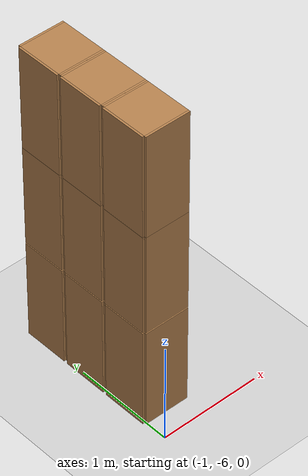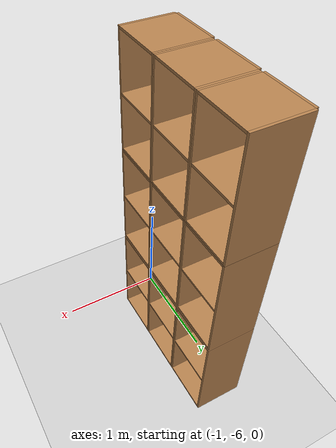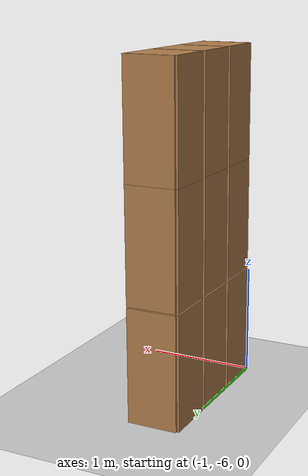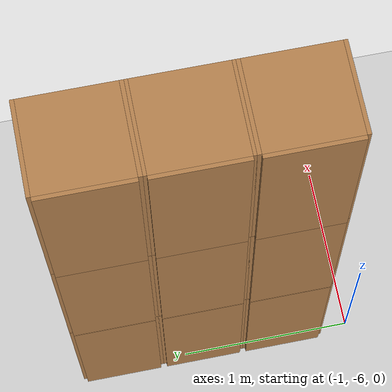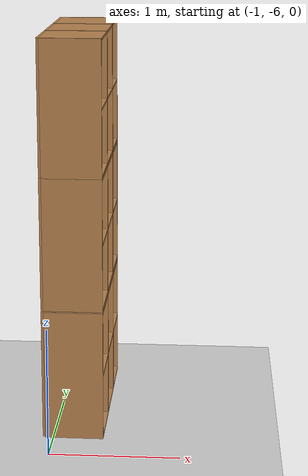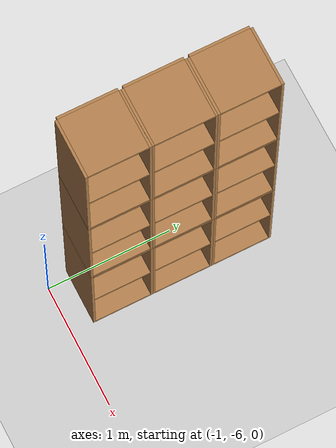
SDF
<sdf version="1.6">
 <world name="default">
  <model name="ground_plane">
   <static>1</static>
   <link name="link">
    <collision name="collision">
     <geometry><plane><normal>0 0 1</normal><size>100 100</size></plane></geometry>
     <surface>
      <contact><collide_bitmask>65535</collide_bitmask></contact>
      <friction><ode><mu>100</mu><mu2>50</mu2></ode></friction>
     </surface>
    </collision>
    <visual name="visual">
     <cast_shadows>0</cast_shadows>
     <geometry><plane><normal>0 0 1</normal><size>100 100</size></plane></geometry>
     <material>
      <script><uri>file://media/materials/scripts/gazebo.material</uri><name>Gazebo/Grey</name></script>
     </material>
    </visual>
   </link>
  </model>
  <model name="Locker18_clone_4_clone_2_clone_1_clone_clone_clone_2_clone_clone_2_clone_clone_0">
   <model name="Locker18">
    <model name="Locker3">
     <model name="cabinet">
      <static>1</static>
      <link name="cabinet_bottom_plate">
       <inertial>
        <pose>0 0 -1 0 -0 0</pose>
        <inertia><ixx>2.05</ixx><ixy>0</ixy><ixz>0</ixz><iyy>2.05</iyy><iyz>0</iyz><izz>2.05</izz></inertia>
        <mass>25</mass>
       </inertial>
       <collision name="cabinet_bottom_plate_geom">
        <pose>0 0 0.01 0 -0 0</pose>
        <geometry><box><size>0.45 0.45 0.02</size></box></geometry>
       </collision>
       <visual name="cabinet_bottom_plate_geom_visual">
        <pose>0 0 0.01 0 -0 0</pose>
        <geometry><box><size>0.45 0.45 0.02</size></box></geometry>
        <material>
         <script><uri>file://media/materials/scripts/gazebo.material</uri><name>Gazebo/Wood</name></script>
        </material>
       </visual>
       <collision name="cabinet_bottom_plate_geom_cabinet_back_plate">
        <pose>0.235 0 0.51 0 -0 0</pose>
        <geometry><box><size>0.02 0.45 1.02</size></box></geometry>
       </collision>
       <visual name="cabinet_bottom_plate_geom_cabinet_back_plate_visual">
        <pose>0.235 0 0.51 0 -0 0</pose>
        <geometry><box><size>0.02 0.45 1.02</size></box></geometry>
        <material>
         <script><uri>file://media/materials/scripts/gazebo.material</uri><name>Gazebo/Wood</name></script>
        </material>
       </visual>
       <collision name="cabinet_bottom_plate_geom_cabinet_left_plate">
        <pose>0 0.235 0.51 0 -0 0</pose>
        <geometry><box><size>0.45 0.02 1.02</size></box></geometry>
       </collision>
       <visual name="cabinet_bottom_plate_geom_cabinet_left_plate_visual">
        <pose>0 0.235 0.51 0 -0 0</pose>
        <geometry><box><size>0.45 0.02 1.02</size></box></geometry>
        <material>
         <script><uri>file://media/materials/scripts/gazebo.material</uri><name>Gazebo/Wood</name></script>
        </material>
       </visual>
       <collision name="cabinet_bottom_plate_geom_cabinet_middle_plate">
        <pose>0 0 0.51 0 -0 0</pose>
        <geometry><box><size>0.45 0.45 0.02</size></box></geometry>
       </collision>
       <visual name="cabinet_bottom_plate_geom_cabinet_middle_plate_visual">
        <pose>0 0 0.51 0 -0 0</pose>
        <geometry><box><size>0.45 0.45 0.02</size></box></geometry>
        <material>
         <script><uri>file://media/materials/scripts/gazebo.material</uri><name>Gazebo/Wood</name></script>
        </material>
       </visual>
       <collision name="cabinet_bottom_plate_geom_cabinet_right_plate">
        <pose>0 -0.235 0.51 0 -0 0</pose>
        <geometry><box><size>0.45 0.02 1.02</size></box></geometry>
       </collision>
       <visual name="cabinet_bottom_plate_geom_cabinet_right_plate_visual">
        <pose>0 -0.235 0.51 0 -0 0</pose>
        <geometry><box><size>0.45 0.02 1.02</size></box></geometry>
        <material>
         <script><uri>file://media/materials/scripts/gazebo.material</uri><name>Gazebo/Wood</name></script>
        </material>
       </visual>
       <collision name="cabinet_bottom_plate_geom_cabinet_top_plate">
        <pose>0 0 1.01 0 -0 0</pose>
        <geometry><box><size>0.45 0.45 0.02</size></box></geometry>
       </collision>
       <visual name="cabinet_bottom_plate_geom_cabinet_top_plate_visual">
        <pose>0 0 1.01 0 -0 0</pose>
        <geometry><box><size>0.45 0.45 0.02</size></box></geometry>
        <material>
         <script><uri>file://media/materials/scripts/gazebo.material</uri><name>Gazebo/Wood</name></script>
        </material>
       </visual>
      </link>
      <pose>-0.676968 1.45758 0 0 -0 0</pose>
     </model>
     <model name="cabinet_clone">
      <static>1</static>
      <link name="cabinet_bottom_plate">
       <inertial>
        <pose>0 0 -1 0 -0 0</pose>
        <inertia><ixx>2.05</ixx><ixy>0</ixy><ixz>0</ixz><iyy>2.05</iyy><iyz>0</iyz><izz>2.05</izz></inertia>
        <mass>25</mass>
       </inertial>
       <collision name="cabinet_bottom_plate_geom">
        <pose>0 0 0.01 0 -0 0</pose>
        <geometry><box><size>0.45 0.45 0.02</size></box></geometry>
       </collision>
       <visual name="cabinet_bottom_plate_geom_visual">
        <pose>0 0 0.01 0 -0 0</pose>
        <geometry><box><size>0.45 0.45 0.02</size></box></geometry>
        <material>
         <script><uri>file://media/materials/scripts/gazebo.material</uri><name>Gazebo/Wood</name></script>
        </material>
       </visual>
       <collision name="cabinet_bottom_plate_geom_cabinet_back_plate">
        <pose>0.235 0 0.51 0 -0 0</pose>
        <geometry><box><size>0.02 0.45 1.02</size></box></geometry>
       </collision>
       <visual name="cabinet_bottom_plate_geom_cabinet_back_plate_visual">
        <pose>0.235 0 0.51 0 -0 0</pose>
        <geometry><box><size>0.02 0.45 1.02</size></box></geometry>
        <material>
         <script><uri>file://media/materials/scripts/gazebo.material</uri><name>Gazebo/Wood</name></script>
        </material>
       </visual>
       <collision name="cabinet_bottom_plate_geom_cabinet_left_plate">
        <pose>0 0.235 0.51 0 -0 0</pose>
        <geometry><box><size>0.45 0.02 1.02</size></box></geometry>
       </collision>
       <visual name="cabinet_bottom_plate_geom_cabinet_left_plate_visual">
        <pose>0 0.235 0.51 0 -0 0</pose>
        <geometry><box><size>0.45 0.02 1.02</size></box></geometry>
        <material>
         <script><uri>file://media/materials/scripts/gazebo.material</uri><name>Gazebo/Wood</name></script>
        </material>
       </visual>
       <collision name="cabinet_bottom_plate_geom_cabinet_middle_plate">
        <pose>0 0 0.51 0 -0 0</pose>
        <geometry><box><size>0.45 0.45 0.02</size></box></geometry>
       </collision>
       <visual name="cabinet_bottom_plate_geom_cabinet_middle_plate_visual">
        <pose>0 0 0.51 0 -0 0</pose>
        <geometry><box><size>0.45 0.45 0.02</size></box></geometry>
        <material>
         <script><uri>file://media/materials/scripts/gazebo.material</uri><name>Gazebo/Wood</name></script>
        </material>
       </visual>
       <collision name="cabinet_bottom_plate_geom_cabinet_right_plate">
        <pose>0 -0.235 0.51 0 -0 0</pose>
        <geometry><box><size>0.45 0.02 1.02</size></box></geometry>
       </collision>
       <visual name="cabinet_bottom_plate_geom_cabinet_right_plate_visual">
        <pose>0 -0.235 0.51 0 -0 0</pose>
        <geometry><box><size>0.45 0.02 1.02</size></box></geometry>
        <material>
         <script><uri>file://media/materials/scripts/gazebo.material</uri><name>Gazebo/Wood</name></script>
        </material>
       </visual>
       <collision name="cabinet_bottom_plate_geom_cabinet_top_plate">
        <pose>0 0 1.01 0 -0 0</pose>
        <geometry><box><size>0.45 0.45 0.02</size></box></geometry>
       </collision>
       <visual name="cabinet_bottom_plate_geom_cabinet_top_plate_visual">
        <pose>0 0 1.01 0 -0 0</pose>
        <geometry><box><size>0.45 0.45 0.02</size></box></geometry>
        <material>
         <script><uri>file://media/materials/scripts/gazebo.material</uri><name>Gazebo/Wood</name></script>
        </material>
       </visual>
      </link>
      <pose>-0.676968 0.970971 0 0 -0 0</pose>
     </model>
     <model name="cabinet_clone_0">
      <static>1</static>
      <link name="cabinet_bottom_plate">
       <inertial>
        <pose>0 0 -1 0 -0 0</pose>
        <inertia><ixx>2.05</ixx><ixy>0</ixy><ixz>0</ixz><iyy>2.05</iyy><iyz>0</iyz><izz>2.05</izz></inertia>
        <mass>25</mass>
       </inertial>
       <collision name="cabinet_bottom_plate_geom">
        <pose>0 0 0.01 0 -0 0</pose>
        <geometry><box><size>0.45 0.45 0.02</size></box></geometry>
       </collision>
       <visual name="cabinet_bottom_plate_geom_visual">
        <pose>0 0 0.01 0 -0 0</pose>
        <geometry><box><size>0.45 0.45 0.02</size></box></geometry>
        <material>
         <script><uri>file://media/materials/scripts/gazebo.material</uri><name>Gazebo/Wood</name></script>
        </material>
       </visual>
       <collision name="cabinet_bottom_plate_geom_cabinet_back_plate">
        <pose>0.235 0 0.51 0 -0 0</pose>
        <geometry><box><size>0.02 0.45 1.02</size></box></geometry>
       </collision>
       <visual name="cabinet_bottom_plate_geom_cabinet_back_plate_visual">
        <pose>0.235 0 0.51 0 -0 0</pose>
        <geometry><box><size>0.02 0.45 1.02</size></box></geometry>
        <material>
         <script><uri>file://media/materials/scripts/gazebo.material</uri><name>Gazebo/Wood</name></script>
        </material>
       </visual>
       <collision name="cabinet_bottom_plate_geom_cabinet_left_plate">
        <pose>0 0.235 0.51 0 -0 0</pose>
        <geometry><box><size>0.45 0.02 1.02</size></box></geometry>
       </collision>
       <visual name="cabinet_bottom_plate_geom_cabinet_left_plate_visual">
        <pose>0 0.235 0.51 0 -0 0</pose>
        <geometry><box><size>0.45 0.02 1.02</size></box></geometry>
        <material>
         <script><uri>file://media/materials/scripts/gazebo.material</uri><name>Gazebo/Wood</name></script>
        </material>
       </visual>
       <collision name="cabinet_bottom_plate_geom_cabinet_middle_plate">
        <pose>0 0 0.51 0 -0 0</pose>
        <geometry><box><size>0.45 0.45 0.02</size></box></geometry>
       </collision>
       <visual name="cabinet_bottom_plate_geom_cabinet_middle_plate_visual">
        <pose>0 0 0.51 0 -0 0</pose>
        <geometry><box><size>0.45 0.45 0.02</size></box></geometry>
        <material>
         <script><uri>file://media/materials/scripts/gazebo.material</uri><name>Gazebo/Wood</name></script>
        </material>
       </visual>
       <collision name="cabinet_bottom_plate_geom_cabinet_right_plate">
        <pose>0 -0.235 0.51 0 -0 0</pose>
        <geometry><box><size>0.45 0.02 1.02</size></box></geometry>
       </collision>
       <visual name="cabinet_bottom_plate_geom_cabinet_right_plate_visual">
        <pose>0 -0.235 0.51 0 -0 0</pose>
        <geometry><box><size>0.45 0.02 1.02</size></box></geometry>
        <material>
         <script><uri>file://media/materials/scripts/gazebo.material</uri><name>Gazebo/Wood</name></script>
        </material>
       </visual>
       <collision name="cabinet_bottom_plate_geom_cabinet_top_plate">
        <pose>0 0 1.01 0 -0 0</pose>
        <geometry><box><size>0.45 0.45 0.02</size></box></geometry>
       </collision>
       <visual name="cabinet_bottom_plate_geom_cabinet_top_plate_visual">
        <pose>0 0 1.01 0 -0 0</pose>
        <geometry><box><size>0.45 0.45 0.02</size></box></geometry>
        <material>
         <script><uri>file://media/materials/scripts/gazebo.material</uri><name>Gazebo/Wood</name></script>
        </material>
       </visual>
      </link>
      <pose>-0.676968 0.48391 0 0 -0 0</pose>
     </model>
     <static>0</static>
     <pose>0 3e-06 -1.02763 0 -0 0</pose>
    </model>
    <model name="Locker3_clone">
     <model name="cabinet">
      <static>1</static>
      <link name="cabinet_bottom_plate">
       <inertial>
        <pose>0 0 -1 0 -0 0</pose>
        <inertia><ixx>2.05</ixx><ixy>0</ixy><ixz>0</ixz><iyy>2.05</iyy><iyz>0</iyz><izz>2.05</izz></inertia>
        <mass>25</mass>
       </inertial>
       <collision name="cabinet_bottom_plate_geom">
        <pose>0 0 0.01 0 -0 0</pose>
        <geometry><box><size>0.45 0.45 0.02</size></box></geometry>
       </collision>
       <visual name="cabinet_bottom_plate_geom_visual">
        <pose>0 0 0.01 0 -0 0</pose>
        <geometry><box><size>0.45 0.45 0.02</size></box></geometry>
        <material>
         <script><uri>file://media/materials/scripts/gazebo.material</uri><name>Gazebo/Wood</name></script>
        </material>
       </visual>
       <collision name="cabinet_bottom_plate_geom_cabinet_back_plate">
        <pose>0.235 0 0.51 0 -0 0</pose>
        <geometry><box><size>0.02 0.45 1.02</size></box></geometry>
       </collision>
       <visual name="cabinet_bottom_plate_geom_cabinet_back_plate_visual">
        <pose>0.235 0 0.51 0 -0 0</pose>
        <geometry><box><size>0.02 0.45 1.02</size></box></geometry>
        <material>
         <script><uri>file://media/materials/scripts/gazebo.material</uri><name>Gazebo/Wood</name></script>
        </material>
       </visual>
       <collision name="cabinet_bottom_plate_geom_cabinet_left_plate">
        <pose>0 0.235 0.51 0 -0 0</pose>
        <geometry><box><size>0.45 0.02 1.02</size></box></geometry>
       </collision>
       <visual name="cabinet_bottom_plate_geom_cabinet_left_plate_visual">
        <pose>0 0.235 0.51 0 -0 0</pose>
        <geometry><box><size>0.45 0.02 1.02</size></box></geometry>
        <material>
         <script><uri>file://media/materials/scripts/gazebo.material</uri><name>Gazebo/Wood</name></script>
        </material>
       </visual>
       <collision name="cabinet_bottom_plate_geom_cabinet_middle_plate">
        <pose>0 0 0.51 0 -0 0</pose>
        <geometry><box><size>0.45 0.45 0.02</size></box></geometry>
       </collision>
       <visual name="cabinet_bottom_plate_geom_cabinet_middle_plate_visual">
        <pose>0 0 0.51 0 -0 0</pose>
        <geometry><box><size>0.45 0.45 0.02</size></box></geometry>
        <material>
         <script><uri>file://media/materials/scripts/gazebo.material</uri><name>Gazebo/Wood</name></script>
        </material>
       </visual>
       <collision name="cabinet_bottom_plate_geom_cabinet_right_plate">
        <pose>0 -0.235 0.51 0 -0 0</pose>
        <geometry><box><size>0.45 0.02 1.02</size></box></geometry>
       </collision>
       <visual name="cabinet_bottom_plate_geom_cabinet_right_plate_visual">
        <pose>0 -0.235 0.51 0 -0 0</pose>
        <geometry><box><size>0.45 0.02 1.02</size></box></geometry>
        <material>
         <script><uri>file://media/materials/scripts/gazebo.material</uri><name>Gazebo/Wood</name></script>
        </material>
       </visual>
       <collision name="cabinet_bottom_plate_geom_cabinet_top_plate">
        <pose>0 0 1.01 0 -0 0</pose>
        <geometry><box><size>0.45 0.45 0.02</size></box></geometry>
       </collision>
       <visual name="cabinet_bottom_plate_geom_cabinet_top_plate_visual">
        <pose>0 0 1.01 0 -0 0</pose>
        <geometry><box><size>0.45 0.45 0.02</size></box></geometry>
        <material>
         <script><uri>file://media/materials/scripts/gazebo.material</uri><name>Gazebo/Wood</name></script>
        </material>
       </visual>
      </link>
      <pose>-0.676968 1.45758 0 0 -0 0</pose>
     </model>
     <model name="cabinet_clone">
      <static>1</static>
      <link name="cabinet_bottom_plate">
       <inertial>
        <pose>0 0 -1 0 -0 0</pose>
        <inertia><ixx>2.05</ixx><ixy>0</ixy><ixz>0</ixz><iyy>2.05</iyy><iyz>0</iyz><izz>2.05</izz></inertia>
        <mass>25</mass>
       </inertial>
       <collision name="cabinet_bottom_plate_geom">
        <pose>0 0 0.01 0 -0 0</pose>
        <geometry><box><size>0.45 0.45 0.02</size></box></geometry>
       </collision>
       <visual name="cabinet_bottom_plate_geom_visual">
        <pose>0 0 0.01 0 -0 0</pose>
        <geometry><box><size>0.45 0.45 0.02</size></box></geometry>
        <material>
         <script><uri>file://media/materials/scripts/gazebo.material</uri><name>Gazebo/Wood</name></script>
        </material>
       </visual>
       <collision name="cabinet_bottom_plate_geom_cabinet_back_plate">
        <pose>0.235 0 0.51 0 -0 0</pose>
        <geometry><box><size>0.02 0.45 1.02</size></box></geometry>
       </collision>
       <visual name="cabinet_bottom_plate_geom_cabinet_back_plate_visual">
        <pose>0.235 0 0.51 0 -0 0</pose>
        <geometry><box><size>0.02 0.45 1.02</size></box></geometry>
        <material>
         <script><uri>file://media/materials/scripts/gazebo.material</uri><name>Gazebo/Wood</name></script>
        </material>
       </visual>
       <collision name="cabinet_bottom_plate_geom_cabinet_left_plate">
        <pose>0 0.235 0.51 0 -0 0</pose>
        <geometry><box><size>0.45 0.02 1.02</size></box></geometry>
       </collision>
       <visual name="cabinet_bottom_plate_geom_cabinet_left_plate_visual">
        <pose>0 0.235 0.51 0 -0 0</pose>
        <geometry><box><size>0.45 0.02 1.02</size></box></geometry>
        <material>
         <script><uri>file://media/materials/scripts/gazebo.material</uri><name>Gazebo/Wood</name></script>
        </material>
       </visual>
       <collision name="cabinet_bottom_plate_geom_cabinet_middle_plate">
        <pose>0 0 0.51 0 -0 0</pose>
        <geometry><box><size>0.45 0.45 0.02</size></box></geometry>
       </collision>
       <visual name="cabinet_bottom_plate_geom_cabinet_middle_plate_visual">
        <pose>0 0 0.51 0 -0 0</pose>
        <geometry><box><size>0.45 0.45 0.02</size></box></geometry>
        <material>
         <script><uri>file://media/materials/scripts/gazebo.material</uri><name>Gazebo/Wood</name></script>
        </material>
       </visual>
       <collision name="cabinet_bottom_plate_geom_cabinet_right_plate">
        <pose>0 -0.235 0.51 0 -0 0</pose>
        <geometry><box><size>0.45 0.02 1.02</size></box></geometry>
       </collision>
       <visual name="cabinet_bottom_plate_geom_cabinet_right_plate_visual">
        <pose>0 -0.235 0.51 0 -0 0</pose>
        <geometry><box><size>0.45 0.02 1.02</size></box></geometry>
        <material>
         <script><uri>file://media/materials/scripts/gazebo.material</uri><name>Gazebo/Wood</name></script>
        </material>
       </visual>
       <collision name="cabinet_bottom_plate_geom_cabinet_top_plate">
        <pose>0 0 1.01 0 -0 0</pose>
        <geometry><box><size>0.45 0.45 0.02</size></box></geometry>
       </collision>
       <visual name="cabinet_bottom_plate_geom_cabinet_top_plate_visual">
        <pose>0 0 1.01 0 -0 0</pose>
        <geometry><box><size>0.45 0.45 0.02</size></box></geometry>
        <material>
         <script><uri>file://media/materials/scripts/gazebo.material</uri><name>Gazebo/Wood</name></script>
        </material>
       </visual>
      </link>
      <pose>-0.676968 0.970971 0 0 -0 0</pose>
     </model>
     <model name="cabinet_clone_0">
      <static>1</static>
      <link name="cabinet_bottom_plate">
       <inertial>
        <pose>0 0 -1 0 -0 0</pose>
        <inertia><ixx>2.05</ixx><ixy>0</ixy><ixz>0</ixz><iyy>2.05</iyy><iyz>0</iyz><izz>2.05</izz></inertia>
        <mass>25</mass>
       </inertial>
       <collision name="cabinet_bottom_plate_geom">
        <pose>0 0 0.01 0 -0 0</pose>
        <geometry><box><size>0.45 0.45 0.02</size></box></geometry>
       </collision>
       <visual name="cabinet_bottom_plate_geom_visual">
        <pose>0 0 0.01 0 -0 0</pose>
        <geometry><box><size>0.45 0.45 0.02</size></box></geometry>
        <material>
         <script><uri>file://media/materials/scripts/gazebo.material</uri><name>Gazebo/Wood</name></script>
        </material>
       </visual>
       <collision name="cabinet_bottom_plate_geom_cabinet_back_plate">
        <pose>0.235 0 0.51 0 -0 0</pose>
        <geometry><box><size>0.02 0.45 1.02</size></box></geometry>
       </collision>
       <visual name="cabinet_bottom_plate_geom_cabinet_back_plate_visual">
        <pose>0.235 0 0.51 0 -0 0</pose>
        <geometry><box><size>0.02 0.45 1.02</size></box></geometry>
        <material>
         <script><uri>file://media/materials/scripts/gazebo.material</uri><name>Gazebo/Wood</name></script>
        </material>
       </visual>
       <collision name="cabinet_bottom_plate_geom_cabinet_left_plate">
        <pose>0 0.235 0.51 0 -0 0</pose>
        <geometry><box><size>0.45 0.02 1.02</size></box></geometry>
       </collision>
       <visual name="cabinet_bottom_plate_geom_cabinet_left_plate_visual">
        <pose>0 0.235 0.51 0 -0 0</pose>
        <geometry><box><size>0.45 0.02 1.02</size></box></geometry>
        <material>
         <script><uri>file://media/materials/scripts/gazebo.material</uri><name>Gazebo/Wood</name></script>
        </material>
       </visual>
       <collision name="cabinet_bottom_plate_geom_cabinet_middle_plate">
        <pose>0 0 0.51 0 -0 0</pose>
        <geometry><box><size>0.45 0.45 0.02</size></box></geometry>
       </collision>
       <visual name="cabinet_bottom_plate_geom_cabinet_middle_plate_visual">
        <pose>0 0 0.51 0 -0 0</pose>
        <geometry><box><size>0.45 0.45 0.02</size></box></geometry>
        <material>
         <script><uri>file://media/materials/scripts/gazebo.material</uri><name>Gazebo/Wood</name></script>
        </material>
       </visual>
       <collision name="cabinet_bottom_plate_geom_cabinet_right_plate">
        <pose>0 -0.235 0.51 0 -0 0</pose>
        <geometry><box><size>0.45 0.02 1.02</size></box></geometry>
       </collision>
       <visual name="cabinet_bottom_plate_geom_cabinet_right_plate_visual">
        <pose>0 -0.235 0.51 0 -0 0</pose>
        <geometry><box><size>0.45 0.02 1.02</size></box></geometry>
        <material>
         <script><uri>file://media/materials/scripts/gazebo.material</uri><name>Gazebo/Wood</name></script>
        </material>
       </visual>
       <collision name="cabinet_bottom_plate_geom_cabinet_top_plate">
        <pose>0 0 1.01 0 -0 0</pose>
        <geometry><box><size>0.45 0.45 0.02</size></box></geometry>
       </collision>
       <visual name="cabinet_bottom_plate_geom_cabinet_top_plate_visual">
        <pose>0 0 1.01 0 -0 0</pose>
        <geometry><box><size>0.45 0.45 0.02</size></box></geometry>
        <material>
         <script><uri>file://media/materials/scripts/gazebo.material</uri><name>Gazebo/Wood</name></script>
        </material>
       </visual>
      </link>
      <pose>-0.676968 0.48391 0 0 -0 0</pose>
     </model>
     <static>0</static>
     <pose>0 3e-06 0.003717 0 -0 0</pose>
    </model>
    <model name="Locker3_clone_clone">
     <model name="cabinet">
      <static>1</static>
      <link name="cabinet_bottom_plate">
       <inertial>
        <pose>0 0 -1 0 -0 0</pose>
        <inertia><ixx>2.05</ixx><ixy>0</ixy><ixz>0</ixz><iyy>2.05</iyy><iyz>0</iyz><izz>2.05</izz></inertia>
        <mass>25</mass>
       </inertial>
       <collision name="cabinet_bottom_plate_geom">
        <pose>0 0 0.01 0 -0 0</pose>
        <geometry><box><size>0.45 0.45 0.02</size></box></geometry>
       </collision>
       <visual name="cabinet_bottom_plate_geom_visual">
        <pose>0 0 0.01 0 -0 0</pose>
        <geometry><box><size>0.45 0.45 0.02</size></box></geometry>
        <material>
         <script><uri>file://media/materials/scripts/gazebo.material</uri><name>Gazebo/Wood</name></script>
        </material>
       </visual>
       <collision name="cabinet_bottom_plate_geom_cabinet_back_plate">
        <pose>0.235 0 0.51 0 -0 0</pose>
        <geometry><box><size>0.02 0.45 1.02</size></box></geometry>
       </collision>
       <visual name="cabinet_bottom_plate_geom_cabinet_back_plate_visual">
        <pose>0.235 0 0.51 0 -0 0</pose>
        <geometry><box><size>0.02 0.45 1.02</size></box></geometry>
        <material>
         <script><uri>file://media/materials/scripts/gazebo.material</uri><name>Gazebo/Wood</name></script>
        </material>
       </visual>
       <collision name="cabinet_bottom_plate_geom_cabinet_left_plate">
        <pose>0 0.235 0.51 0 -0 0</pose>
        <geometry><box><size>0.45 0.02 1.02</size></box></geometry>
       </collision>
       <visual name="cabinet_bottom_plate_geom_cabinet_left_plate_visual">
        <pose>0 0.235 0.51 0 -0 0</pose>
        <geometry><box><size>0.45 0.02 1.02</size></box></geometry>
        <material>
         <script><uri>file://media/materials/scripts/gazebo.material</uri><name>Gazebo/Wood</name></script>
        </material>
       </visual>
       <collision name="cabinet_bottom_plate_geom_cabinet_middle_plate">
        <pose>0 0 0.51 0 -0 0</pose>
        <geometry><box><size>0.45 0.45 0.02</size></box></geometry>
       </collision>
       <visual name="cabinet_bottom_plate_geom_cabinet_middle_plate_visual">
        <pose>0 0 0.51 0 -0 0</pose>
        <geometry><box><size>0.45 0.45 0.02</size></box></geometry>
        <material>
         <script><uri>file://media/materials/scripts/gazebo.material</uri><name>Gazebo/Wood</name></script>
        </material>
       </visual>
       <collision name="cabinet_bottom_plate_geom_cabinet_right_plate">
        <pose>0 -0.235 0.51 0 -0 0</pose>
        <geometry><box><size>0.45 0.02 1.02</size></box></geometry>
       </collision>
       <visual name="cabinet_bottom_plate_geom_cabinet_right_plate_visual">
        <pose>0 -0.235 0.51 0 -0 0</pose>
        <geometry><box><size>0.45 0.02 1.02</size></box></geometry>
        <material>
         <script><uri>file://media/materials/scripts/gazebo.material</uri><name>Gazebo/Wood</name></script>
        </material>
       </visual>
       <collision name="cabinet_bottom_plate_geom_cabinet_top_plate">
        <pose>0 0 1.01 0 -0 0</pose>
        <geometry><box><size>0.45 0.45 0.02</size></box></geometry>
       </collision>
       <visual name="cabinet_bottom_plate_geom_cabinet_top_plate_visual">
        <pose>0 0 1.01 0 -0 0</pose>
        <geometry><box><size>0.45 0.45 0.02</size></box></geometry>
        <material>
         <script><uri>file://media/materials/scripts/gazebo.material</uri><name>Gazebo/Wood</name></script>
        </material>
       </visual>
      </link>
      <pose>-0.676968 1.45758 0 0 -0 0</pose>
     </model>
     <model name="cabinet_clone">
      <static>1</static>
      <link name="cabinet_bottom_plate">
       <inertial>
        <pose>0 0 -1 0 -0 0</pose>
        <inertia><ixx>2.05</ixx><ixy>0</ixy><ixz>0</ixz><iyy>2.05</iyy><iyz>0</iyz><izz>2.05</izz></inertia>
        <mass>25</mass>
       </inertial>
       <collision name="cabinet_bottom_plate_geom">
        <pose>0 0 0.01 0 -0 0</pose>
        <geometry><box><size>0.45 0.45 0.02</size></box></geometry>
       </collision>
       <visual name="cabinet_bottom_plate_geom_visual">
        <pose>0 0 0.01 0 -0 0</pose>
        <geometry><box><size>0.45 0.45 0.02</size></box></geometry>
        <material>
         <script><uri>file://media/materials/scripts/gazebo.material</uri><name>Gazebo/Wood</name></script>
        </material>
       </visual>
       <collision name="cabinet_bottom_plate_geom_cabinet_back_plate">
        <pose>0.235 0 0.51 0 -0 0</pose>
        <geometry><box><size>0.02 0.45 1.02</size></box></geometry>
       </collision>
       <visual name="cabinet_bottom_plate_geom_cabinet_back_plate_visual">
        <pose>0.235 0 0.51 0 -0 0</pose>
        <geometry><box><size>0.02 0.45 1.02</size></box></geometry>
        <material>
         <script><uri>file://media/materials/scripts/gazebo.material</uri><name>Gazebo/Wood</name></script>
        </material>
       </visual>
       <collision name="cabinet_bottom_plate_geom_cabinet_left_plate">
        <pose>0 0.235 0.51 0 -0 0</pose>
        <geometry><box><size>0.45 0.02 1.02</size></box></geometry>
       </collision>
       <visual name="cabinet_bottom_plate_geom_cabinet_left_plate_visual">
        <pose>0 0.235 0.51 0 -0 0</pose>
        <geometry><box><size>0.45 0.02 1.02</size></box></geometry>
        <material>
         <script><uri>file://media/materials/scripts/gazebo.material</uri><name>Gazebo/Wood</name></script>
        </material>
       </visual>
       <collision name="cabinet_bottom_plate_geom_cabinet_middle_plate">
        <pose>0 0 0.51 0 -0 0</pose>
        <geometry><box><size>0.45 0.45 0.02</size></box></geometry>
       </collision>
       <visual name="cabinet_bottom_plate_geom_cabinet_middle_plate_visual">
        <pose>0 0 0.51 0 -0 0</pose>
        <geometry><box><size>0.45 0.45 0.02</size></box></geometry>
        <material>
         <script><uri>file://media/materials/scripts/gazebo.material</uri><name>Gazebo/Wood</name></script>
        </material>
       </visual>
       <collision name="cabinet_bottom_plate_geom_cabinet_right_plate">
        <pose>0 -0.235 0.51 0 -0 0</pose>
        <geometry><box><size>0.45 0.02 1.02</size></box></geometry>
       </collision>
       <visual name="cabinet_bottom_plate_geom_cabinet_right_plate_visual">
        <pose>0 -0.235 0.51 0 -0 0</pose>
        <geometry><box><size>0.45 0.02 1.02</size></box></geometry>
        <material>
         <script><uri>file://media/materials/scripts/gazebo.material</uri><name>Gazebo/Wood</name></script>
        </material>
       </visual>
       <collision name="cabinet_bottom_plate_geom_cabinet_top_plate">
        <pose>0 0 1.01 0 -0 0</pose>
        <geometry><box><size>0.45 0.45 0.02</size></box></geometry>
       </collision>
       <visual name="cabinet_bottom_plate_geom_cabinet_top_plate_visual">
        <pose>0 0 1.01 0 -0 0</pose>
        <geometry><box><size>0.45 0.45 0.02</size></box></geometry>
        <material>
         <script><uri>file://media/materials/scripts/gazebo.material</uri><name>Gazebo/Wood</name></script>
        </material>
       </visual>
      </link>
      <pose>-0.676968 0.970971 0 0 -0 0</pose>
     </model>
     <model name="cabinet_clone_0">
      <static>1</static>
      <link name="cabinet_bottom_plate">
       <inertial>
        <pose>0 0 -1 0 -0 0</pose>
        <inertia><ixx>2.05</ixx><ixy>0</ixy><ixz>0</ixz><iyy>2.05</iyy><iyz>0</iyz><izz>2.05</izz></inertia>
        <mass>25</mass>
       </inertial>
       <collision name="cabinet_bottom_plate_geom">
        <pose>0 0 0.01 0 -0 0</pose>
        <geometry><box><size>0.45 0.45 0.02</size></box></geometry>
       </collision>
       <visual name="cabinet_bottom_plate_geom_visual">
        <pose>0 0 0.01 0 -0 0</pose>
        <geometry><box><size>0.45 0.45 0.02</size></box></geometry>
        <material>
         <script><uri>file://media/materials/scripts/gazebo.material</uri><name>Gazebo/Wood</name></script>
        </material>
       </visual>
       <collision name="cabinet_bottom_plate_geom_cabinet_back_plate">
        <pose>0.235 0 0.51 0 -0 0</pose>
        <geometry><box><size>0.02 0.45 1.02</size></box></geometry>
       </collision>
       <visual name="cabinet_bottom_plate_geom_cabinet_back_plate_visual">
        <pose>0.235 0 0.51 0 -0 0</pose>
        <geometry><box><size>0.02 0.45 1.02</size></box></geometry>
        <material>
         <script><uri>file://media/materials/scripts/gazebo.material</uri><name>Gazebo/Wood</name></script>
        </material>
       </visual>
       <collision name="cabinet_bottom_plate_geom_cabinet_left_plate">
        <pose>0 0.235 0.51 0 -0 0</pose>
        <geometry><box><size>0.45 0.02 1.02</size></box></geometry>
       </collision>
       <visual name="cabinet_bottom_plate_geom_cabinet_left_plate_visual">
        <pose>0 0.235 0.51 0 -0 0</pose>
        <geometry><box><size>0.45 0.02 1.02</size></box></geometry>
        <material>
         <script><uri>file://media/materials/scripts/gazebo.material</uri><name>Gazebo/Wood</name></script>
        </material>
       </visual>
       <collision name="cabinet_bottom_plate_geom_cabinet_middle_plate">
        <pose>0 0 0.51 0 -0 0</pose>
        <geometry><box><size>0.45 0.45 0.02</size></box></geometry>
       </collision>
       <visual name="cabinet_bottom_plate_geom_cabinet_middle_plate_visual">
        <pose>0 0 0.51 0 -0 0</pose>
        <geometry><box><size>0.45 0.45 0.02</size></box></geometry>
        <material>
         <script><uri>file://media/materials/scripts/gazebo.material</uri><name>Gazebo/Wood</name></script>
        </material>
       </visual>
       <collision name="cabinet_bottom_plate_geom_cabinet_right_plate">
        <pose>0 -0.235 0.51 0 -0 0</pose>
        <geometry><box><size>0.45 0.02 1.02</size></box></geometry>
       </collision>
       <visual name="cabinet_bottom_plate_geom_cabinet_right_plate_visual">
        <pose>0 -0.235 0.51 0 -0 0</pose>
        <geometry><box><size>0.45 0.02 1.02</size></box></geometry>
        <material>
         <script><uri>file://media/materials/scripts/gazebo.material</uri><name>Gazebo/Wood</name></script>
        </material>
       </visual>
       <collision name="cabinet_bottom_plate_geom_cabinet_top_plate">
        <pose>0 0 1.01 0 -0 0</pose>
        <geometry><box><size>0.45 0.45 0.02</size></box></geometry>
       </collision>
       <visual name="cabinet_bottom_plate_geom_cabinet_top_plate_visual">
        <pose>0 0 1.01 0 -0 0</pose>
        <geometry><box><size>0.45 0.45 0.02</size></box></geometry>
        <material>
         <script><uri>file://media/materials/scripts/gazebo.material</uri><name>Gazebo/Wood</name></script>
        </material>
       </visual>
      </link>
      <pose>-0.676968 0.48391 0 0 -0 0</pose>
     </model>
     <static>0</static>
     <pose>0 3e-06 1.02391 0 -0 0</pose>
    </model>
    <static>0</static>
    <pose>-0 4e-06 4e-06 0 -0 0</pose>
   </model>
   <static>0</static>
   <pose>-1.4992 -4.12547 1.08672 0 -0 3.14119</pose>
  </model>
 </world>
</sdf>
